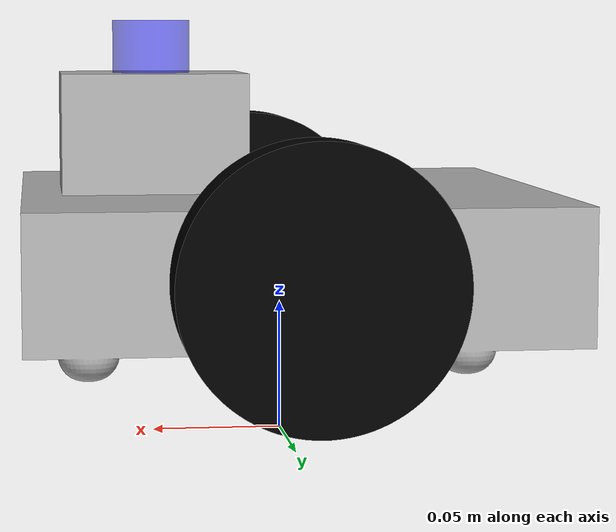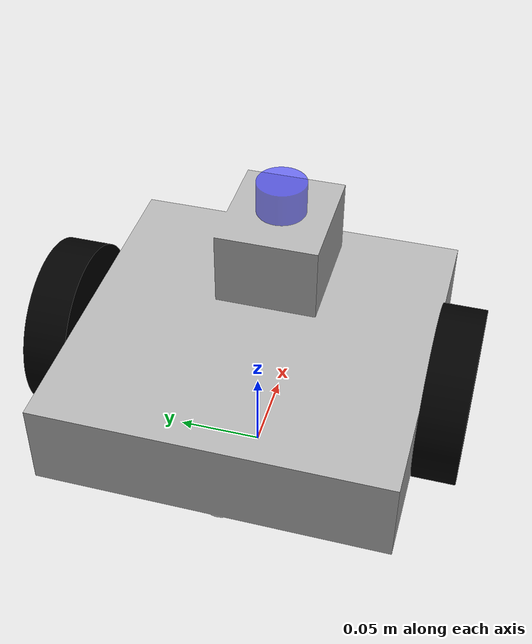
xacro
<?xml version="1.0" ?>
<robot name="robot" xmlns:xacro="http://www.ros.org/wiki/xacro">

<xacro:include filename="$(find vora_robot)/urdf/materials.xacro" />
<xacro:include filename="$(find vora_robot)/urdf/mobile_robot.gazebo" />

<link name="base_link"> </link>

<joint name="body_link_joint" type="fixed">
  <origin xyz="0 0 0.02" rpy="0 0 0"/>
  <parent link="base_link"/>
  <child link="body_link"/>
</joint>

<link name="body_link">
  <inertial>
    <origin xyz="0.004277981482528393 0.0 0.053736790419557784" rpy="0 0 0"/>
    <mass value="17.34053789227228"/>
    <inertia ixx="0.059622" iyy="0.064057" izz="0.110002" ixy="-0.0" iyz="0.0" ixz="-0.003246"/>
  </inertial>
  <visual>
    <origin xyz="0 0 0" rpy="0 0 0"/>
    <geometry>
      <mesh filename="file://$(find vora_robot)/meshes/body_link.stl" scale="0.001 0.001 0.001"/>
    </geometry>
    <material name="silver"/>
  </visual>
  <collision>
    <origin xyz="0 0 0" rpy="0 0 0"/>
    <geometry>
      <mesh filename="file://$(find vora_robot)/meshes/body_link.stl" scale="0.001 0.001 0.001"/>
    </geometry>
  </collision>
</link>

<link name="left_wheel">
  <inertial>
    <origin xyz="5.790023100122031e-18 0.012500000000000011 0.0" rpy="0 0 0"/>
    <mass value="1.5413438956674914"/>
    <inertia ixx="0.001044" iyy="0.001927" izz="0.001044" ixy="0.0" iyz="0.0" ixz="0.0"/>
  </inertial>
  <visual>
    <origin xyz="-0.0 -0.1 -0.05" rpy="0 0 0"/>
    <geometry>
      <mesh filename="file://$(find vora_robot)/meshes/left_wheel.stl" scale="0.001 0.001 0.001"/>
    </geometry>
    <material name="black"/>
  </visual>
  <collision>
    <origin xyz="0 0 0" rpy="1.5708 0 0"/>
    <geometry>
      <cylinder radius="0.05" length="0.04"/>
    </geometry>
  </collision>
</link>

<link name="right_wheel">
  <inertial>
    <origin xyz="-5.790023100122029e-18 -0.012499999999999997 0.0" rpy="0 0 0"/>
    <mass value="1.541343895667492"/>
    <inertia ixx="0.001044" iyy="0.001927" izz="0.001044" ixy="-0.0" iyz="-0.0" ixz="0.0"/>
  </inertial>
  <visual>
    <origin xyz="-0.0 0.1 -0.05" rpy="0 0 0"/>
    <geometry>
      <mesh filename="file://$(find vora_robot)/meshes/right_wheel.stl" scale="0.001 0.001 0.001"/>
    </geometry>
    <material name="black"/>
  </visual>
  <collision>
    <origin xyz="0 0 0" rpy="1.5708 0 0"/>
    <geometry>
      <cylinder radius="0.05" length="0.04"/>
    </geometry>
  </collision>
</link>

<link name="lidar">
  <visual>
    <origin xyz="-0.05 -0.0 -0.12" rpy="0 0 0"/>
    <geometry>
      <mesh filename="file://$(find vora_robot)/meshes/lidar.stl" scale="0.001 0.001 0.001"/>
    </geometry>
    <material name="blue"/>
  </visual>
</link>

<joint name="left_wheel_joint" type="continuous">
  <origin xyz="0.0 0.1 0.05" rpy="0 0 0"/>
  <parent link="body_link"/>
  <child link="left_wheel"/>
  <axis xyz="0.0 1.0 0.0"/>
</joint>

<joint name="right_wheel_joint" type="continuous">
  <origin xyz="0.0 -0.1 0.05" rpy="0 0 0"/>
  <parent link="body_link"/>
  <child link="right_wheel"/>
  <axis xyz="0.0 1.0 0.0"/>
</joint>

<joint name="lidar_joint" type="fixed">
  <origin xyz="0.05 0.0 0.12" rpy="0 0 0"/>
  <parent link="body_link"/>
  <child link="lidar"/>
</joint>

</robot>

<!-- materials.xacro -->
<robot name="robot" xmlns:xacro="http://www.ros.org/wiki/xacro" >

<material name="silver">
  <color rgba="0.700 0.700 0.700 1.000"/>
</material>

<material name="black">
  <color rgba="0.0 0.0 0.0 1.0"/>
</material>>

<material name="blue">
  <color rgba="0.0 0.0 1.0 0.5"/>
</material>>

</robot>

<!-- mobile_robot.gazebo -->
<robot name="robot" xmlns:xacro="http://www.ros.org/wiki/xacro" >

<xacro:property name="body_color" value="Gazebo/Silver" />
<xacro:property name="wheel_color" value="Gazebo/black" />
<xacro:property name="lidar_color" value="Gazebo/blue" />

<gazebo reference="body_link">
  <material>${body_color}</material>
  <mu1>0.0</mu1>
  <mu2>0.0</mu2>
  <self_collide>false</self_collide>
  <gravity>true</gravity>
</gazebo>

<gazebo reference="left_wheel">
  <material>${wheel_color}</material>
  <mu1>1.0</mu1>
  <mu2>1.0</mu2>
  <self_collide>true</self_collide>
</gazebo>

<gazebo reference="right_wheel">
  <material>${wheel_color}</material>
  <mu1>1.0</mu1>
  <mu2>1.0</mu2>
  <self_collide>true</self_collide>
</gazebo>

<gazebo reference="lidar">
  <material>${lidar_color}</material>
  <mu1>0.2</mu1>
  <mu2>0.2</mu2>
  <self_collide>false</self_collide>
</gazebo>

<gazebo>
  <plugin filename="gz-sim-diff-drive-system" name="gz::sim::systems::DiffDrive">
    <right_joint>right_wheel_joint</right_joint>
    <left_joint>left_wheel_joint</left_joint>

    <wheel_separation>0.2</wheel_separation>
    <wheel_radius>0.05</wheel_radius>
    <max_linear_acceleration>10</max_linear_acceleration>

    <topic>/cmd_vel</topic>
    <tf_topic>/tf</tf_topic>
    <odom_topic>/odom</odom_topic>
    <frame_id>odom</frame_id>
    <child_frame_id>base_link</child_frame_id>
    <odom_publish_frequency>30</odom_publish_frequency>
  </plugin>
  <plugin filename="gz-sim-joint-state-publisher-system" name="gz::sim::systems::JointStatePublisher">
    <topic>joint_states</topic>
    <joint_name>right_wheel_joint</joint_name>
    <joint_name>left_wheel_joint</joint_name>
  </plugin>
</gazebo>

<gazebo>
  <plugin filename="gz-sim-sensors-system" name="gz::sim::systems::Sensors">
    <render_engine>ogre2</render_engine>
  </plugin>
</gazebo>

<gazebo reference="lidar">
  <sensor name="gpu_lidar" type="gpu_lidar">
    <pose>0 0 0 0 0 0</pose>
    <topic>/scan</topic>
    <update_rate>30</update_rate>
    <gz_frame_id>lidar</gz_frame_id>
    <lidar>
      <scan>
        <horizontal>
          <samples>720</samples>
          <resolution>1</resolution>
          <min_angle>-3.14</min_angle>
          <max_angle>3.14</max_angle>
        </horizontal>
      </scan>
      <range>
        <min>0.10</min> <max>12.0</max>
        <resolution>0.005</resolution>
      </range>
      <noise>
        <type>gaussian</type>
        <mean>0.0</mean>
        <stddev>0.001</stddev>
      </noise>
    </lidar>
    <always_on>1</always_on>
    <visualize>true</visualize>
  </sensor>
</gazebo>

</robot>
